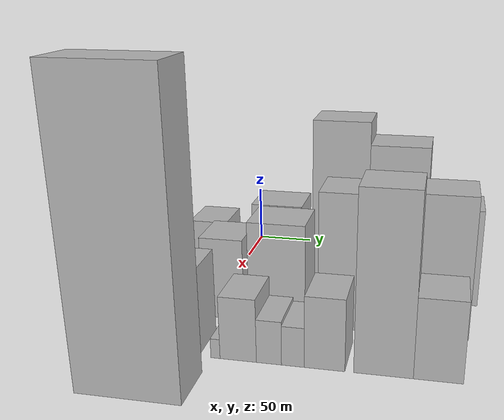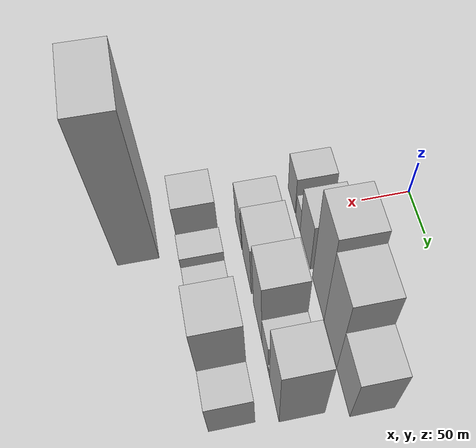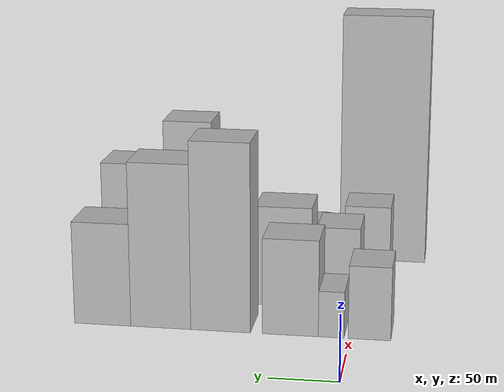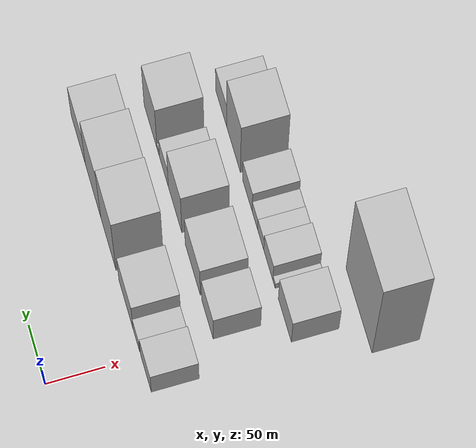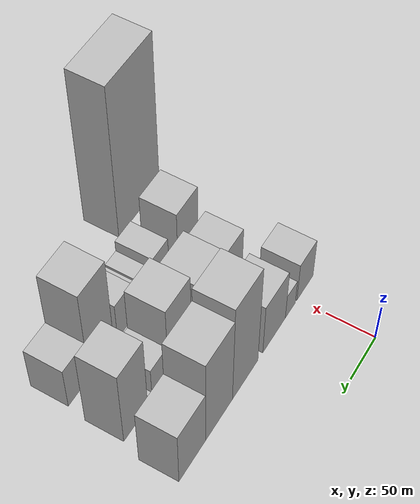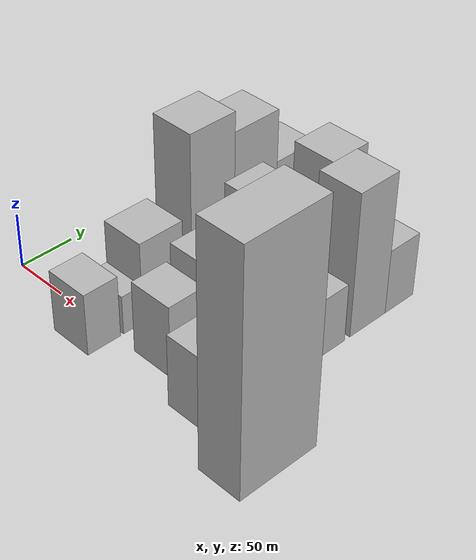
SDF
<sdf version="1.6">
 <world name="default">
  <model name="building_28">
   <static>1</static>
   <pose>100.0000 -14.4142 0 0.000000 0.000000 0.000000</pose>
   <link name="link">
    <pose>0 0 28.50 0 0 0</pose>
    <collision name="collision"><geometry><box><size>40.0000 31.6736 57.0000</size></box></geometry></collision>
    <visual name="visual">
     <cast_shadows>0</cast_shadows>
     <geometry><box><size>40.0000 31.6736 57.0000</size></box></geometry>
     <material>
      <script>
       <uri>model://HANNAS_wall/materials/scripts</uri>
       <uri>model://HANNAS_wall/materials/textures</uri>
       <name>vrc/HANNAS_wall</name>
      </script>
     </material>
    </visual>
   </link>
  </model>
  <model name="building_29">
   <static>1</static>
   <pose>100.0000 14.0344 0 0.000000 0.000000 0.000000</pose>
   <link name="link">
    <pose>0 0 18.00 0 0 0</pose>
    <collision name="collision"><geometry><box><size>40.0000 19.2237 36.0000</size></box></geometry></collision>
    <visual name="visual">
     <cast_shadows>0</cast_shadows>
     <geometry><box><size>40.0000 19.2237 36.0000</size></box></geometry>
     <material>
      <script>
       <uri>model://HANNAS_wall/materials/scripts</uri>
       <uri>model://HANNAS_wall/materials/textures</uri>
       <name>vrc/HANNAS_wall</name>
      </script>
     </material>
    </visual>
   </link>
  </model>
  <model name="building_30">
   <static>1</static>
   <pose>100.0000 44.7785 0 0.000000 0.000000 0.000000</pose>
   <link name="link">
    <pose>0 0 37.50 0 0 0</pose>
    <collision name="collision"><geometry><box><size>40.0000 42.2645 75.0000</size></box></geometry></collision>
    <visual name="visual">
     <cast_shadows>0</cast_shadows>
     <geometry><box><size>40.0000 42.2645 75.0000</size></box></geometry>
     <material>
      <script>
       <uri>model://HANNAS_wall/materials/scripts</uri>
       <uri>model://HANNAS_wall/materials/textures</uri>
       <name>vrc/HANNAS_wall</name>
      </script>
     </material>
    </visual>
   </link>
  </model>
  <model name="building_31">
   <static>1</static>
   <pose>100.0000 97.7026 0 0.000000 0.000000 0.000000</pose>
   <link name="link">
    <pose>0 0 73.50 0 0 0</pose>
    <collision name="collision"><geometry><box><size>40.0000 45.5837 147.0000</size></box></geometry></collision>
    <visual name="visual">
     <cast_shadows>0</cast_shadows>
     <geometry><box><size>40.0000 45.5837 147.0000</size></box></geometry>
     <material>
      <script>
       <uri>model://HANNAS_wall/materials/scripts</uri>
       <uri>model://HANNAS_wall/materials/textures</uri>
       <name>vrc/HANNAS_wall</name>
      </script>
     </material>
    </visual>
   </link>
  </model>
  <model name="building_32">
   <static>1</static>
   <pose>100.0000 143.7222 0 0.000000 0.000000 0.000000</pose>
   <link name="link">
    <pose>0 0 64.50 0 0 0</pose>
    <collision name="collision"><geometry><box><size>40.0000 46.4555 129.0000</size></box></geometry></collision>
    <visual name="visual">
     <cast_shadows>0</cast_shadows>
     <geometry><box><size>40.0000 46.4555 129.0000</size></box></geometry>
     <material>
      <script>
       <uri>model://HANNAS_wall/materials/scripts</uri>
       <uri>model://HANNAS_wall/materials/textures</uri>
       <name>vrc/HANNAS_wall</name>
      </script>
     </material>
    </visual>
   </link>
  </model>
  <model name="building_33">
   <static>1</static>
   <pose>100.0000 188.9396 0 0.000000 0.000000 0.000000</pose>
   <link name="link">
    <pose>0 0 40.50 0 0 0</pose>
    <collision name="collision"><geometry><box><size>40.0000 43.9792 81.0000</size></box></geometry></collision>
    <visual name="visual">
     <cast_shadows>0</cast_shadows>
     <geometry><box><size>40.0000 43.9792 81.0000</size></box></geometry>
     <material>
      <script>
       <uri>model://HANNAS_wall/materials/scripts</uri>
       <uri>model://HANNAS_wall/materials/textures</uri>
       <name>vrc/HANNAS_wall</name>
      </script>
     </material>
    </visual>
   </link>
  </model>
  <model name="building_85">
   <static>1</static>
   <pose>160.0000 14.9345 0 0.000000 0.000000 0.000000</pose>
   <link name="link">
    <pose>0 0 33.00 0 0 0</pose>
    <collision name="collision"><geometry><box><size>40.0000 33.8661 66.0000</size></box></geometry></collision>
    <visual name="visual">
     <cast_shadows>0</cast_shadows>
     <geometry><box><size>40.0000 33.8661 66.0000</size></box></geometry>
     <material>
      <script>
       <uri>model://HANNAS_wall/materials/scripts</uri>
       <uri>model://HANNAS_wall/materials/textures</uri>
       <name>vrc/HANNAS_wall</name>
      </script>
     </material>
    </visual>
   </link>
  </model>
  <model name="building_86">
   <static>1</static>
   <pose>160.0000 58.0895 0 0.000000 0.000000 0.000000</pose>
   <link name="link">
    <pose>0 0 40.50 0 0 0</pose>
    <collision name="collision"><geometry><box><size>40.0000 44.4440 81.0000</size></box></geometry></collision>
    <visual name="visual">
     <cast_shadows>0</cast_shadows>
     <geometry><box><size>40.0000 44.4440 81.0000</size></box></geometry>
     <material>
      <script>
       <uri>model://HANNAS_wall/materials/scripts</uri>
       <uri>model://HANNAS_wall/materials/textures</uri>
       <name>vrc/HANNAS_wall</name>
      </script>
     </material>
    </visual>
   </link>
  </model>
  <model name="building_87">
   <static>1</static>
   <pose>160.0000 110.2341 0 0.000000 0.000000 0.000000</pose>
   <link name="link">
    <pose>0 0 54.00 0 0 0</pose>
    <collision name="collision"><geometry><box><size>40.0000 39.8451 108.0000</size></box></geometry></collision>
    <visual name="visual">
     <cast_shadows>0</cast_shadows>
     <geometry><box><size>40.0000 39.8451 108.0000</size></box></geometry>
     <material>
      <script>
       <uri>model://HANNAS_wall/materials/scripts</uri>
       <uri>model://HANNAS_wall/materials/textures</uri>
       <name>vrc/HANNAS_wall</name>
      </script>
     </material>
    </visual>
   </link>
  </model>
  <model name="building_88">
   <static>1</static>
   <pose>160.0000 143.5494 0 0.000000 0.000000 0.000000</pose>
   <link name="link">
    <pose>0 0 25.50 0 0 0</pose>
    <collision name="collision"><geometry><box><size>40.0000 26.7856 51.0000</size></box></geometry></collision>
    <visual name="visual">
     <cast_shadows>0</cast_shadows>
     <geometry><box><size>40.0000 26.7856 51.0000</size></box></geometry>
     <material>
      <script>
       <uri>model://HANNAS_wall/materials/scripts</uri>
       <uri>model://HANNAS_wall/materials/textures</uri>
       <name>vrc/HANNAS_wall</name>
      </script>
     </material>
    </visual>
   </link>
  </model>
  <model name="building_89">
   <static>1</static>
   <pose>160.0000 160.6171 0 0.000000 0.000000 0.000000</pose>
   <link name="link">
    <pose>0 0 7.50 0 0 0</pose>
    <collision name="collision"><geometry><box><size>40.0000 7.3497 15.0000</size></box></geometry></collision>
    <visual name="visual">
     <cast_shadows>0</cast_shadows>
     <geometry><box><size>40.0000 7.3497 15.0000</size></box></geometry>
     <material>
      <script>
       <uri>model://HANNAS_wall/materials/scripts</uri>
       <uri>model://HANNAS_wall/materials/textures</uri>
       <name>vrc/HANNAS_wall</name>
      </script>
     </material>
    </visual>
   </link>
  </model>
  <model name="building_90">
   <static>1</static>
   <pose>160.0000 183.7148 0 0.000000 0.000000 0.000000</pose>
   <link name="link">
    <pose>0 0 55.50 0 0 0</pose>
    <collision name="collision"><geometry><box><size>40.0000 38.8458 111.0000</size></box></geometry></collision>
    <visual name="visual">
     <cast_shadows>0</cast_shadows>
     <geometry><box><size>40.0000 38.8458 111.0000</size></box></geometry>
     <material>
      <script>
       <uri>model://HANNAS_wall/materials/scripts</uri>
       <uri>model://HANNAS_wall/materials/textures</uri>
       <name>vrc/HANNAS_wall</name>
      </script>
     </material>
    </visual>
   </link>
  </model>
  <model name="building_140">
   <static>1</static>
   <pose>220.0000 -3.2694 0 0.000000 0.000000 0.000000</pose>
   <link name="link">
    <pose>0 0 33.00 0 0 0</pose>
    <collision name="collision"><geometry><box><size>40.0000 37.4882 66.0000</size></box></geometry></collision>
    <visual name="visual">
     <cast_shadows>0</cast_shadows>
     <geometry><box><size>40.0000 37.4882 66.0000</size></box></geometry>
     <material>
      <script>
       <uri>model://HANNAS_wall/materials/scripts</uri>
       <uri>model://HANNAS_wall/materials/textures</uri>
       <name>vrc/HANNAS_wall</name>
      </script>
     </material>
    </visual>
   </link>
  </model>
  <model name="building_141">
   <static>1</static>
   <pose>220.0000 27.8396 0 0.000000 0.000000 0.000000</pose>
   <link name="link">
    <pose>0 0 7.50 0 0 0</pose>
    <collision name="collision"><geometry><box><size>40.0000 6.7298 15.0000</size></box></geometry></collision>
    <visual name="visual">
     <cast_shadows>0</cast_shadows>
     <geometry><box><size>40.0000 6.7298 15.0000</size></box></geometry>
     <material>
      <script>
       <uri>model://HANNAS_wall/materials/scripts</uri>
       <uri>model://HANNAS_wall/materials/textures</uri>
       <name>vrc/HANNAS_wall</name>
      </script>
     </material>
    </visual>
   </link>
  </model>
  <model name="building_142">
   <static>1</static>
   <pose>220.0000 44.4099 0 0.000000 0.000000 0.000000</pose>
   <link name="link">
    <pose>0 0 24.00 0 0 0</pose>
    <collision name="collision"><geometry><box><size>40.0000 26.4106 48.0000</size></box></geometry></collision>
    <visual name="visual">
     <cast_shadows>0</cast_shadows>
     <geometry><box><size>40.0000 26.4106 48.0000</size></box></geometry>
     <material>
      <script>
       <uri>model://HANNAS_wall/materials/scripts</uri>
       <uri>model://HANNAS_wall/materials/textures</uri>
       <name>vrc/HANNAS_wall</name>
      </script>
     </material>
    </visual>
   </link>
  </model>
  <model name="building_143">
   <static>1</static>
   <pose>220.0000 66.5911 0 0.000000 0.000000 0.000000</pose>
   <link name="link">
    <pose>0 0 16.50 0 0 0</pose>
    <collision name="collision"><geometry><box><size>40.0000 17.9517 33.0000</size></box></geometry></collision>
    <visual name="visual">
     <cast_shadows>0</cast_shadows>
     <geometry><box><size>40.0000 17.9517 33.0000</size></box></geometry>
     <material>
      <script>
       <uri>model://HANNAS_wall/materials/scripts</uri>
       <uri>model://HANNAS_wall/materials/textures</uri>
       <name>vrc/HANNAS_wall</name>
      </script>
     </material>
    </visual>
   </link>
  </model>
  <model name="building_144">
   <static>1</static>
   <pose>220.0000 83.6626 0 0.000000 0.000000 0.000000</pose>
   <link name="link">
    <pose>0 0 15.00 0 0 0</pose>
    <collision name="collision"><geometry><box><size>40.0000 16.1914 30.0000</size></box></geometry></collision>
    <visual name="visual">
     <cast_shadows>0</cast_shadows>
     <geometry><box><size>40.0000 16.1914 30.0000</size></box></geometry>
     <material>
      <script>
       <uri>model://HANNAS_wall/materials/scripts</uri>
       <uri>model://HANNAS_wall/materials/textures</uri>
       <name>vrc/HANNAS_wall</name>
      </script>
     </material>
    </visual>
   </link>
  </model>
  <model name="building_145">
   <static>1</static>
   <pose>220.0000 105.7964 0 0.000000 0.000000 0.000000</pose>
   <link name="link">
    <pose>0 0 27.00 0 0 0</pose>
    <collision name="collision"><geometry><box><size>40.0000 28.0761 54.0000</size></box></geometry></collision>
    <visual name="visual">
     <cast_shadows>0</cast_shadows>
     <geometry><box><size>40.0000 28.0761 54.0000</size></box></geometry>
     <material>
      <script>
       <uri>model://HANNAS_wall/materials/scripts</uri>
       <uri>model://HANNAS_wall/materials/textures</uri>
       <name>vrc/HANNAS_wall</name>
      </script>
     </material>
    </visual>
   </link>
  </model>
  <model name="building_146">
   <static>1</static>
   <pose>220.0000 145.9951 0 0.000000 0.000000 0.000000</pose>
   <link name="link">
    <pose>0 0 66.00 0 0 0</pose>
    <collision name="collision"><geometry><box><size>40.0000 40.3213 132.0000</size></box></geometry></collision>
    <visual name="visual">
     <cast_shadows>0</cast_shadows>
     <geometry><box><size>40.0000 40.3213 132.0000</size></box></geometry>
     <material>
      <script>
       <uri>model://HANNAS_wall/materials/scripts</uri>
       <uri>model://HANNAS_wall/materials/textures</uri>
       <name>vrc/HANNAS_wall</name>
      </script>
     </material>
    </visual>
   </link>
  </model>
  <model name="building_147">
   <static>1</static>
   <pose>220.0000 182.6544 0 0.000000 0.000000 0.000000</pose>
   <link name="link">
    <pose>0 0 30.00 0 0 0</pose>
    <collision name="collision"><geometry><box><size>40.0000 32.9972 60.0000</size></box></geometry></collision>
    <visual name="visual">
     <cast_shadows>0</cast_shadows>
     <geometry><box><size>40.0000 32.9972 60.0000</size></box></geometry>
     <material>
      <script>
       <uri>model://HANNAS_wall/materials/scripts</uri>
       <uri>model://HANNAS_wall/materials/textures</uri>
       <name>vrc/HANNAS_wall</name>
      </script>
     </material>
    </visual>
   </link>
  </model>
  <model name="building_194">
   <static>1</static>
   <pose>280.0000 -11.9997 0 0.000000 0.000000 0.000000</pose>
   <link name="link">
    <pose>0 0 106.50 0 0 0</pose>
    <collision name="collision"><geometry><box><size>40.0000 73.4585 213.0000</size></box></geometry></collision>
    <visual name="visual">
     <cast_shadows>0</cast_shadows>
     <geometry><box><size>40.0000 73.4585 213.0000</size></box></geometry>
     <material>
      <script>
       <uri>model://HANNAS_wall/materials/scripts</uri>
       <uri>model://HANNAS_wall/materials/textures</uri>
       <name>vrc/HANNAS_wall</name>
      </script>
     </material>
    </visual>
   </link>
  </model>
 </world>
</sdf>
